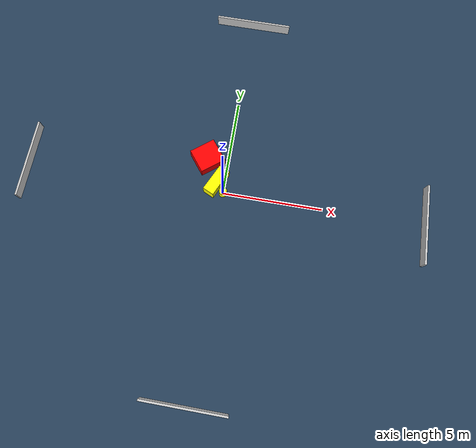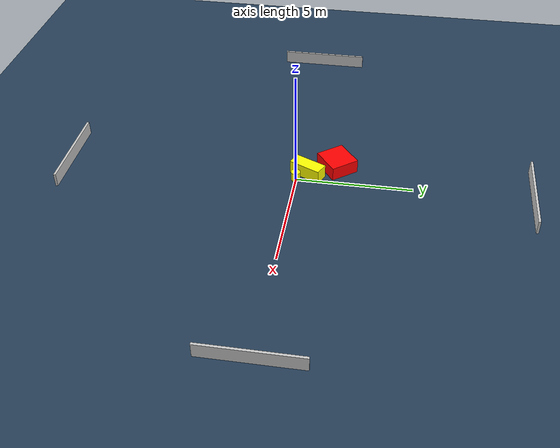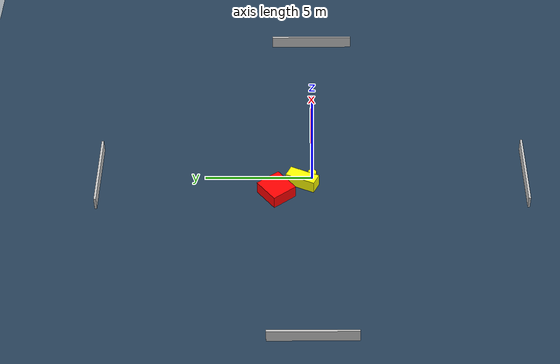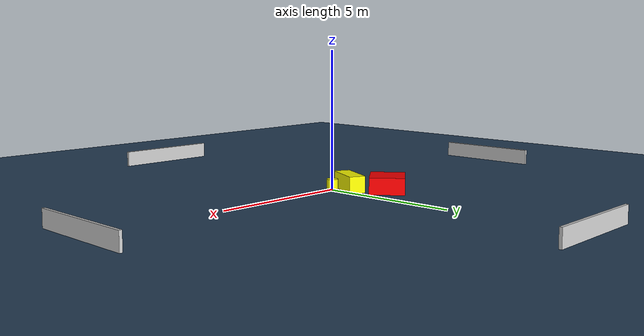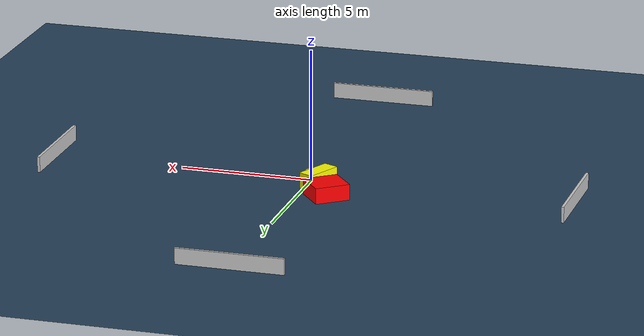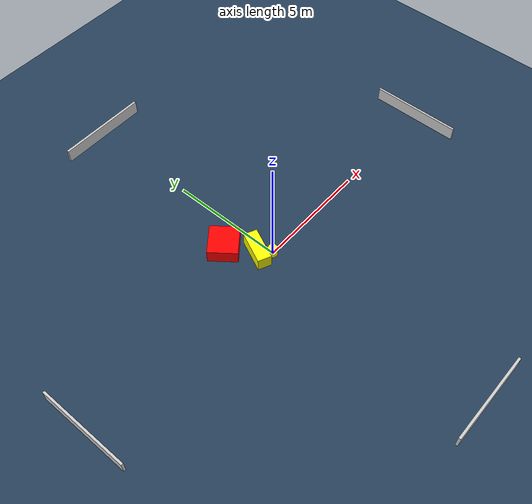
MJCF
<?xml version="1.0" ?>
<mujoco model="generated_environment">
  <option timestep="0.01" integrator="RK4" cone="elliptic"/>
  <default>
    <geom density="1"/>
  </default>
  <asset>
    <texture builtin="gradient" height="3072" name="skybox" rgb1="0.3 0.5 0.7" rgb2="0 0 0" type="skybox" width="512"/>
    <texture builtin="checker" height="300" name="groundplane" rgb1="0.2 0.3 0.4" rgb2="0.1 0.2 0.3" type="2d" width="300"/>
    <material name="groundplane" reflectance="0.2" texrepeat="5 5" texture="groundplane"/>
  </asset>
  <worldbody>
    <light dir="0 0 -1" directional="true" pos="0 0 1.5"/>
    <geom condim="3" friction="0.5 0.005 0.001" material="groundplane" name="floor" pos="0 0 0" size="0 0 0.05" type="plane"/>
    <body name="walls">
      <geom name="wall_1" condim="4" pos="-10.0 0.0 0.3" rgba="0.800000011920929 0.800000011920929 0.800000011920929 1.0" size="0.05 2.0 0.3" type="box"/>
      <geom name="wall_2" condim="4" pos="10.0 0.0 0.3" rgba="0.800000011920929 0.800000011920929 0.800000011920929 1.0" size="0.05 2.0 0.3" type="box"/>
      <geom name="wall_3" condim="4" pos="0.0 -10.0 0.3" rgba="0.800000011920929 0.800000011920929 0.800000011920929 1.0" size="2.0 0.05 0.3" type="box"/>
      <geom name="wall_4" condim="4" pos="0.0 10.0 0.3" rgba="0.800000011920929 0.800000011920929 0.800000011920929 1.0" size="2.0 0.05 0.3" type="box"/>
    </body>
    <body name="robot">
      <joint name="joint_x" type="slide" pos="0 0 0" axis="1 0 0"/>
      <joint name="joint_y" type="slide" pos="0 0 0" axis="0 1 0"/>
      <geom name="robot" type="cylinder" pos="0.0 0.0 0.2" size="0.2 0.2 0.0" mass="5.0" friction="1.0 0.005 0.0001" condim="4" rgba="1.0 1.0 0.0 1.0"/>
    </body>
    <body name="obstacle_1_movable">
      <geom name="obstacle_1_movable" condim="4" pos="-0.40936643264796446 0.458413062528564 0.3" euler="0 0 155.0232769566352" friction="0.0 0.005 0.001" rgba="1.0 1.0 0.0 1.0" size="0.2930836968080045 0.7185013605271557 0.3" type="box" mass="0.1"/>
      <joint type="free"/>
    </body>
    <body name="obstacle_2_static">
      <geom name="obstacle_2_static" condim="4" pos="-1.0729267223184766 1.670311424547344 0.3" euler="0 0 218.01298054068283" friction="0.0 0.005 0.001" rgba="1.0 0.0 0.0 1.0" size="0.6632653014098527 0.6259296054492689 0.3" type="box"/>
    </body>
  </worldbody>
  <actuator>
    <motor name="actuator_x" joint="joint_x" gear="1" ctrlrange="-1 1"/>
    <motor name="actuator_y" joint="joint_y" gear="1" ctrlrange="-1 1"/>
  </actuator>
</mujoco>
